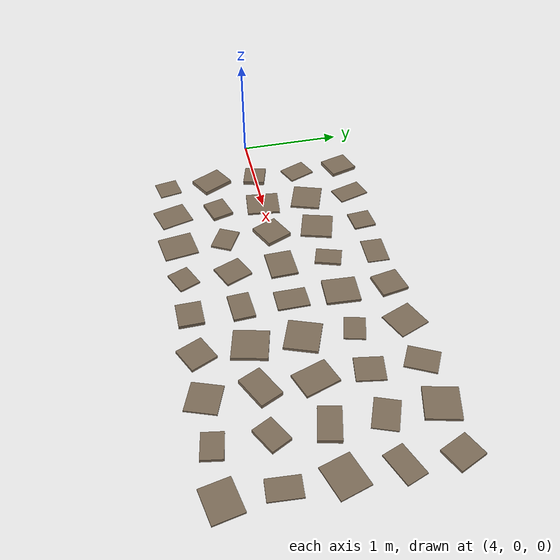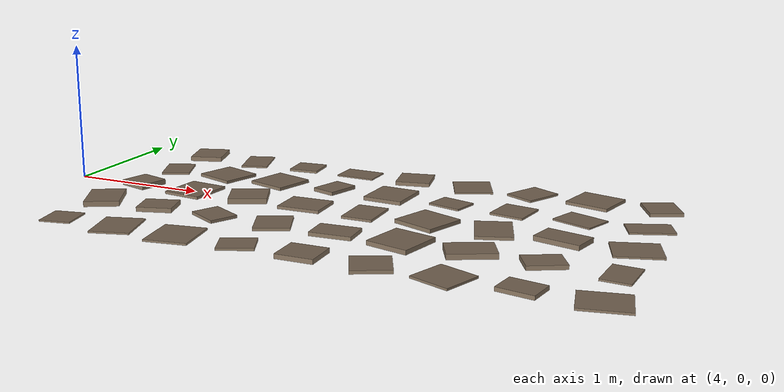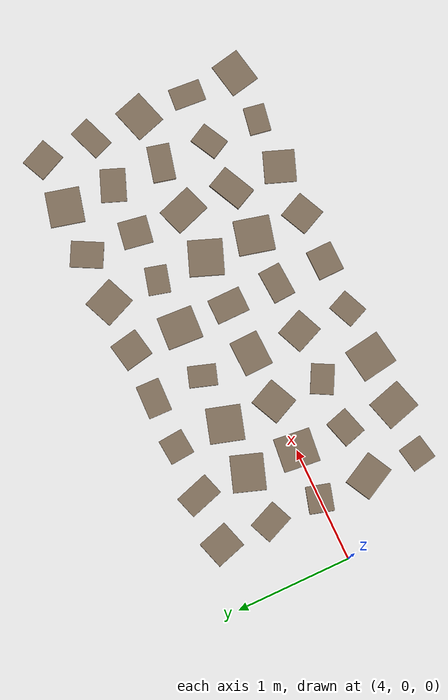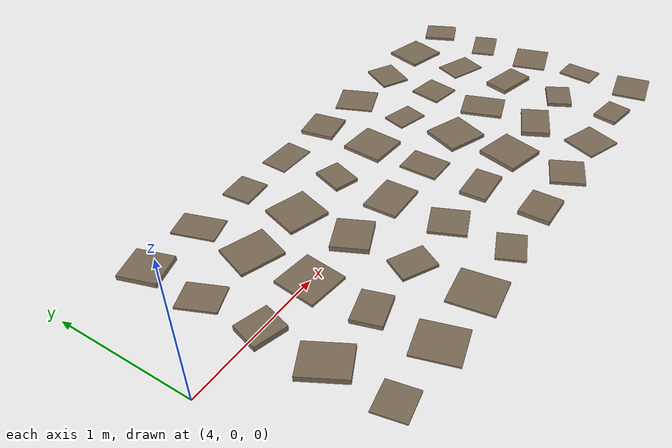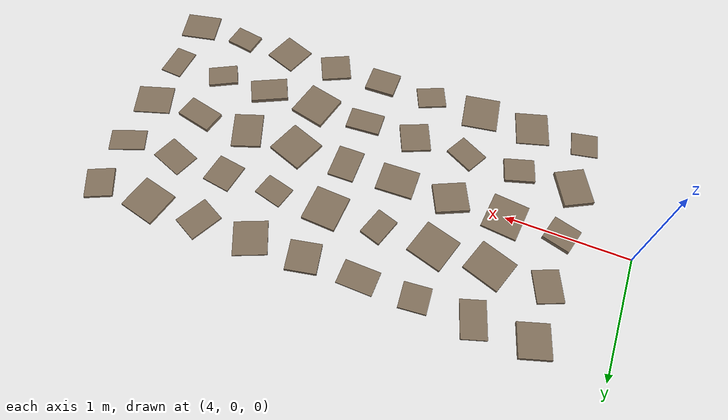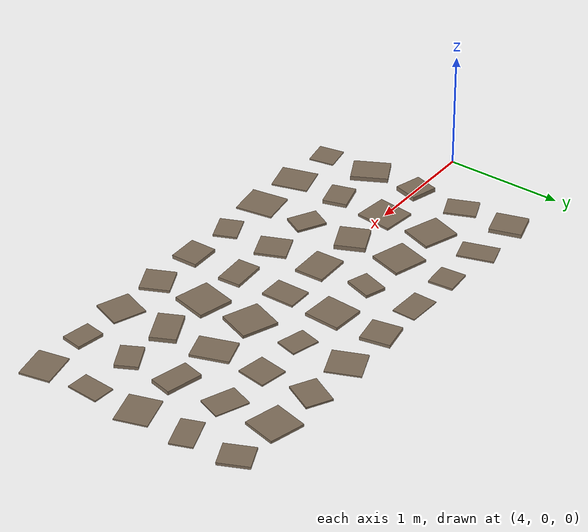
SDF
<sdf version="1.6">
 <world name="default">
  <include><uri>model://sun</uri></include>
  <model name="rough_patch_9_0">
   <static>true</static>
   <pose>4.550 -0.900 0.0054 0 0 0.1925</pose>
   <link name="link">
    <collision name="collision">
     <geometry><box><size>0.219 0.216 0.0108</size></box></geometry>
     <surface>
      <friction><ode><mu>0.8</mu><mu2>0.8</mu2><slip1>0.0</slip1><slip2>0.0</slip2></ode></friction>
      <contact>
       <ode><kp>1000000.0</kp><kd>100.0</kd><max_vel>0.01</max_vel><min_depth>0.001</min_depth></ode>
      </contact>
     </surface>
    </collision>
    <visual name="visual">
     <geometry><box><size>0.219 0.216 0.0108</size></box></geometry>
     <material><ambient>0.38 0.34 0.28 1</ambient><diffuse>0.50 0.43 0.35 1</diffuse></material>
    </visual>
   </link>
  </model>
  <model name="rough_patch_9_1">
   <static>true</static>
   <pose>4.550 -0.450 0.0193 0 0 0.4880</pose>
   <link name="link">
    <collision name="collision">
     <geometry><box><size>0.243 0.311 0.0387</size></box></geometry>
     <surface>
      <friction><ode><mu>0.8</mu><mu2>0.8</mu2><slip1>0.0</slip1><slip2>0.0</slip2></ode></friction>
      <contact>
       <ode><kp>1000000.0</kp><kd>100.0</kd><max_vel>0.01</max_vel><min_depth>0.001</min_depth></ode>
      </contact>
     </surface>
    </collision>
    <visual name="visual">
     <geometry><box><size>0.243 0.311 0.0387</size></box></geometry>
     <material><ambient>0.38 0.34 0.28 1</ambient><diffuse>0.50 0.43 0.35 1</diffuse></material>
    </visual>
   </link>
  </model>
  <model name="rough_patch_9_2">
   <static>true</static>
   <pose>4.550 0.000 0.0193 0 0 -0.2732</pose>
   <link name="link">
    <collision name="collision">
     <geometry><box><size>0.231 0.211 0.0387</size></box></geometry>
     <surface>
      <friction><ode><mu>0.8</mu><mu2>0.8</mu2><slip1>0.0</slip1><slip2>0.0</slip2></ode></friction>
      <contact>
       <ode><kp>1000000.0</kp><kd>100.0</kd><max_vel>0.01</max_vel><min_depth>0.001</min_depth></ode>
      </contact>
     </surface>
    </collision>
    <visual name="visual">
     <geometry><box><size>0.231 0.211 0.0387</size></box></geometry>
     <material><ambient>0.38 0.34 0.28 1</ambient><diffuse>0.50 0.43 0.35 1</diffuse></material>
    </visual>
   </link>
  </model>
  <model name="rough_patch_9_3">
   <static>true</static>
   <pose>4.550 0.450 0.0080 0 0 0.4003</pose>
   <link name="link">
    <collision name="collision">
     <geometry><box><size>0.209 0.267 0.0159</size></box></geometry>
     <surface>
      <friction><ode><mu>0.8</mu><mu2>0.8</mu2><slip1>0.0</slip1><slip2>0.0</slip2></ode></friction>
      <contact>
       <ode><kp>1000000.0</kp><kd>100.0</kd><max_vel>0.01</max_vel><min_depth>0.001</min_depth></ode>
      </contact>
     </surface>
    </collision>
    <visual name="visual">
     <geometry><box><size>0.209 0.267 0.0159</size></box></geometry>
     <material><ambient>0.38 0.34 0.28 1</ambient><diffuse>0.50 0.43 0.35 1</diffuse></material>
    </visual>
   </link>
  </model>
  <model name="rough_patch_9_4">
   <static>true</static>
   <pose>4.550 0.900 0.0176 0 0 0.2996</pose>
   <link name="link">
    <collision name="collision">
     <geometry><box><size>0.247 0.271 0.0352</size></box></geometry>
     <surface>
      <friction><ode><mu>0.8</mu><mu2>0.8</mu2><slip1>0.0</slip1><slip2>0.0</slip2></ode></friction>
      <contact>
       <ode><kp>1000000.0</kp><kd>100.0</kd><max_vel>0.01</max_vel><min_depth>0.001</min_depth></ode>
      </contact>
     </surface>
    </collision>
    <visual name="visual">
     <geometry><box><size>0.247 0.271 0.0352</size></box></geometry>
     <material><ambient>0.38 0.34 0.28 1</ambient><diffuse>0.50 0.43 0.35 1</diffuse></material>
    </visual>
   </link>
  </model>
  <model name="rough_patch_10_0">
   <static>true</static>
   <pose>5.000 -0.900 0.0063 0 0 0.2823</pose>
   <link name="link">
    <collision name="collision">
     <geometry><box><size>0.272 0.307 0.0125</size></box></geometry>
     <surface>
      <friction><ode><mu>0.8</mu><mu2>0.8</mu2><slip1>0.0</slip1><slip2>0.0</slip2></ode></friction>
      <contact>
       <ode><kp>1000000.0</kp><kd>100.0</kd><max_vel>0.01</max_vel><min_depth>0.001</min_depth></ode>
      </contact>
     </surface>
    </collision>
    <visual name="visual">
     <geometry><box><size>0.272 0.307 0.0125</size></box></geometry>
     <material><ambient>0.38 0.34 0.28 1</ambient><diffuse>0.50 0.43 0.35 1</diffuse></material>
    </visual>
   </link>
  </model>
  <model name="rough_patch_10_1">
   <static>true</static>
   <pose>5.000 -0.450 0.0163 0 0 0.2891</pose>
   <link name="link">
    <collision name="collision">
     <geometry><box><size>0.247 0.205 0.0325</size></box></geometry>
     <surface>
      <friction><ode><mu>0.8</mu><mu2>0.8</mu2><slip1>0.0</slip1><slip2>0.0</slip2></ode></friction>
      <contact>
       <ode><kp>1000000.0</kp><kd>100.0</kd><max_vel>0.01</max_vel><min_depth>0.001</min_depth></ode>
      </contact>
     </surface>
    </collision>
    <visual name="visual">
     <geometry><box><size>0.247 0.205 0.0325</size></box></geometry>
     <material><ambient>0.38 0.34 0.28 1</ambient><diffuse>0.50 0.43 0.35 1</diffuse></material>
    </visual>
   </link>
  </model>
  <model name="rough_patch_10_2">
   <static>true</static>
   <pose>5.000 0.000 0.0100 0 0 -0.1042</pose>
   <link name="link">
    <collision name="collision">
     <geometry><box><size>0.292 0.316 0.0200</size></box></geometry>
     <surface>
      <friction><ode><mu>0.8</mu><mu2>0.8</mu2><slip1>0.0</slip1><slip2>0.0</slip2></ode></friction>
      <contact>
       <ode><kp>1000000.0</kp><kd>100.0</kd><max_vel>0.01</max_vel><min_depth>0.001</min_depth></ode>
      </contact>
     </surface>
    </collision>
    <visual name="visual">
     <geometry><box><size>0.292 0.316 0.0200</size></box></geometry>
     <material><ambient>0.38 0.34 0.28 1</ambient><diffuse>0.50 0.43 0.35 1</diffuse></material>
    </visual>
   </link>
  </model>
  <model name="rough_patch_10_3">
   <static>true</static>
   <pose>5.000 0.450 0.0110 0 0 -0.3300</pose>
   <link name="link">
    <collision name="collision">
     <geometry><box><size>0.313 0.281 0.0220</size></box></geometry>
     <surface>
      <friction><ode><mu>0.8</mu><mu2>0.8</mu2><slip1>0.0</slip1><slip2>0.0</slip2></ode></friction>
      <contact>
       <ode><kp>1000000.0</kp><kd>100.0</kd><max_vel>0.01</max_vel><min_depth>0.001</min_depth></ode>
      </contact>
     </surface>
    </collision>
    <visual name="visual">
     <geometry><box><size>0.313 0.281 0.0220</size></box></geometry>
     <material><ambient>0.38 0.34 0.28 1</ambient><diffuse>0.50 0.43 0.35 1</diffuse></material>
    </visual>
   </link>
  </model>
  <model name="rough_patch_10_4">
   <static>true</static>
   <pose>5.000 0.900 0.0069 0 0 0.3065</pose>
   <link name="link">
    <collision name="collision">
     <geometry><box><size>0.201 0.307 0.0138</size></box></geometry>
     <surface>
      <friction><ode><mu>0.8</mu><mu2>0.8</mu2><slip1>0.0</slip1><slip2>0.0</slip2></ode></friction>
      <contact>
       <ode><kp>1000000.0</kp><kd>100.0</kd><max_vel>0.01</max_vel><min_depth>0.001</min_depth></ode>
      </contact>
     </surface>
    </collision>
    <visual name="visual">
     <geometry><box><size>0.201 0.307 0.0138</size></box></geometry>
     <material><ambient>0.38 0.34 0.28 1</ambient><diffuse>0.50 0.43 0.35 1</diffuse></material>
    </visual>
   </link>
  </model>
  <model name="rough_patch_11_0">
   <static>true</static>
   <pose>5.450 -0.900 0.0072 0 0 0.1573</pose>
   <link name="link">
    <collision name="collision">
     <geometry><box><size>0.296 0.317 0.0144</size></box></geometry>
     <surface>
      <friction><ode><mu>0.8</mu><mu2>0.8</mu2><slip1>0.0</slip1><slip2>0.0</slip2></ode></friction>
      <contact>
       <ode><kp>1000000.0</kp><kd>100.0</kd><max_vel>0.01</max_vel><min_depth>0.001</min_depth></ode>
      </contact>
     </surface>
    </collision>
    <visual name="visual">
     <geometry><box><size>0.296 0.317 0.0144</size></box></geometry>
     <material><ambient>0.38 0.34 0.28 1</ambient><diffuse>0.50 0.43 0.35 1</diffuse></material>
    </visual>
   </link>
  </model>
  <model name="rough_patch_11_1">
   <static>true</static>
   <pose>5.450 -0.450 0.0103 0 0 -0.4858</pose>
   <link name="link">
    <collision name="collision">
     <geometry><box><size>0.257 0.198 0.0205</size></box></geometry>
     <surface>
      <friction><ode><mu>0.8</mu><mu2>0.8</mu2><slip1>0.0</slip1><slip2>0.0</slip2></ode></friction>
      <contact>
       <ode><kp>1000000.0</kp><kd>100.0</kd><max_vel>0.01</max_vel><min_depth>0.001</min_depth></ode>
      </contact>
     </surface>
    </collision>
    <visual name="visual">
     <geometry><box><size>0.257 0.198 0.0205</size></box></geometry>
     <material><ambient>0.38 0.34 0.28 1</ambient><diffuse>0.50 0.43 0.35 1</diffuse></material>
    </visual>
   </link>
  </model>
  <model name="rough_patch_11_2">
   <static>true</static>
   <pose>5.450 0.000 0.0196 0 0 0.4336</pose>
   <link name="link">
    <collision name="collision">
     <geometry><box><size>0.271 0.254 0.0391</size></box></geometry>
     <surface>
      <friction><ode><mu>0.8</mu><mu2>0.8</mu2><slip1>0.0</slip1><slip2>0.0</slip2></ode></friction>
      <contact>
       <ode><kp>1000000.0</kp><kd>100.0</kd><max_vel>0.01</max_vel><min_depth>0.001</min_depth></ode>
      </contact>
     </surface>
    </collision>
    <visual name="visual">
     <geometry><box><size>0.271 0.254 0.0391</size></box></geometry>
     <material><ambient>0.38 0.34 0.28 1</ambient><diffuse>0.50 0.43 0.35 1</diffuse></material>
    </visual>
   </link>
  </model>
  <model name="rough_patch_11_3">
   <static>true</static>
   <pose>5.450 0.450 0.0115 0 0 -0.2890</pose>
   <link name="link">
    <collision name="collision">
     <geometry><box><size>0.302 0.296 0.0230</size></box></geometry>
     <surface>
      <friction><ode><mu>0.8</mu><mu2>0.8</mu2><slip1>0.0</slip1><slip2>0.0</slip2></ode></friction>
      <contact>
       <ode><kp>1000000.0</kp><kd>100.0</kd><max_vel>0.01</max_vel><min_depth>0.001</min_depth></ode>
      </contact>
     </surface>
    </collision>
    <visual name="visual">
     <geometry><box><size>0.302 0.296 0.0230</size></box></geometry>
     <material><ambient>0.38 0.34 0.28 1</ambient><diffuse>0.50 0.43 0.35 1</diffuse></material>
    </visual>
   </link>
  </model>
  <model name="rough_patch_11_4">
   <static>true</static>
   <pose>5.450 0.900 0.0088 0 0 0.0864</pose>
   <link name="link">
    <collision name="collision">
     <geometry><box><size>0.221 0.214 0.0176</size></box></geometry>
     <surface>
      <friction><ode><mu>0.8</mu><mu2>0.8</mu2><slip1>0.0</slip1><slip2>0.0</slip2></ode></friction>
      <contact>
       <ode><kp>1000000.0</kp><kd>100.0</kd><max_vel>0.01</max_vel><min_depth>0.001</min_depth></ode>
      </contact>
     </surface>
    </collision>
    <visual name="visual">
     <geometry><box><size>0.221 0.214 0.0176</size></box></geometry>
     <material><ambient>0.38 0.34 0.28 1</ambient><diffuse>0.50 0.43 0.35 1</diffuse></material>
    </visual>
   </link>
  </model>
  <model name="rough_patch_12_0">
   <static>true</static>
   <pose>5.900 -0.900 0.0089 0 0 0.4100</pose>
   <link name="link">
    <collision name="collision">
     <geometry><box><size>0.239 0.198 0.0178</size></box></geometry>
     <surface>
      <friction><ode><mu>0.8</mu><mu2>0.8</mu2><slip1>0.0</slip1><slip2>0.0</slip2></ode></friction>
      <contact>
       <ode><kp>1000000.0</kp><kd>100.0</kd><max_vel>0.01</max_vel><min_depth>0.001</min_depth></ode>
      </contact>
     </surface>
    </collision>
    <visual name="visual">
     <geometry><box><size>0.239 0.198 0.0178</size></box></geometry>
     <material><ambient>0.38 0.34 0.28 1</ambient><diffuse>0.50 0.43 0.35 1</diffuse></material>
    </visual>
   </link>
  </model>
  <model name="rough_patch_12_1">
   <static>true</static>
   <pose>5.900 -0.450 0.0103 0 0 0.4043</pose>
   <link name="link">
    <collision name="collision">
     <geometry><box><size>0.244 0.262 0.0206</size></box></geometry>
     <surface>
      <friction><ode><mu>0.8</mu><mu2>0.8</mu2><slip1>0.0</slip1><slip2>0.0</slip2></ode></friction>
      <contact>
       <ode><kp>1000000.0</kp><kd>100.0</kd><max_vel>0.01</max_vel><min_depth>0.001</min_depth></ode>
      </contact>
     </surface>
    </collision>
    <visual name="visual">
     <geometry><box><size>0.244 0.262 0.0206</size></box></geometry>
     <material><ambient>0.38 0.34 0.28 1</ambient><diffuse>0.50 0.43 0.35 1</diffuse></material>
    </visual>
   </link>
  </model>
  <model name="rough_patch_12_2">
   <static>true</static>
   <pose>5.900 0.000 0.0113 0 0 0.0318</pose>
   <link name="link">
    <collision name="collision">
     <geometry><box><size>0.308 0.250 0.0226</size></box></geometry>
     <surface>
      <friction><ode><mu>0.8</mu><mu2>0.8</mu2><slip1>0.0</slip1><slip2>0.0</slip2></ode></friction>
      <contact>
       <ode><kp>1000000.0</kp><kd>100.0</kd><max_vel>0.01</max_vel><min_depth>0.001</min_depth></ode>
      </contact>
     </surface>
    </collision>
    <visual name="visual">
     <geometry><box><size>0.308 0.250 0.0226</size></box></geometry>
     <material><ambient>0.38 0.34 0.28 1</ambient><diffuse>0.50 0.43 0.35 1</diffuse></material>
    </visual>
   </link>
  </model>
  <model name="rough_patch_12_3">
   <static>true</static>
   <pose>5.900 0.450 0.0129 0 0 -0.3169</pose>
   <link name="link">
    <collision name="collision">
     <geometry><box><size>0.183 0.242 0.0257</size></box></geometry>
     <surface>
      <friction><ode><mu>0.8</mu><mu2>0.8</mu2><slip1>0.0</slip1><slip2>0.0</slip2></ode></friction>
      <contact>
       <ode><kp>1000000.0</kp><kd>100.0</kd><max_vel>0.01</max_vel><min_depth>0.001</min_depth></ode>
      </contact>
     </surface>
    </collision>
    <visual name="visual">
     <geometry><box><size>0.183 0.242 0.0257</size></box></geometry>
     <material><ambient>0.38 0.34 0.28 1</ambient><diffuse>0.50 0.43 0.35 1</diffuse></material>
    </visual>
   </link>
  </model>
  <model name="rough_patch_12_4">
   <static>true</static>
   <pose>5.900 0.900 0.0051 0 0 -0.0265</pose>
   <link name="link">
    <collision name="collision">
     <geometry><box><size>0.292 0.204 0.0101</size></box></geometry>
     <surface>
      <friction><ode><mu>0.8</mu><mu2>0.8</mu2><slip1>0.0</slip1><slip2>0.0</slip2></ode></friction>
      <contact>
       <ode><kp>1000000.0</kp><kd>100.0</kd><max_vel>0.01</max_vel><min_depth>0.001</min_depth></ode>
      </contact>
     </surface>
    </collision>
    <visual name="visual">
     <geometry><box><size>0.292 0.204 0.0101</size></box></geometry>
     <material><ambient>0.38 0.34 0.28 1</ambient><diffuse>0.50 0.43 0.35 1</diffuse></material>
    </visual>
   </link>
  </model>
  <model name="rough_patch_13_0">
   <static>true</static>
   <pose>6.350 -0.900 0.0159 0 0 0.0183</pose>
   <link name="link">
    <collision name="collision">
     <geometry><box><size>0.258 0.226 0.0318</size></box></geometry>
     <surface>
      <friction><ode><mu>0.8</mu><mu2>0.8</mu2><slip1>0.0</slip1><slip2>0.0</slip2></ode></friction>
      <contact>
       <ode><kp>1000000.0</kp><kd>100.0</kd><max_vel>0.01</max_vel><min_depth>0.001</min_depth></ode>
      </contact>
     </surface>
    </collision>
    <visual name="visual">
     <geometry><box><size>0.258 0.226 0.0318</size></box></geometry>
     <material><ambient>0.38 0.34 0.28 1</ambient><diffuse>0.50 0.43 0.35 1</diffuse></material>
    </visual>
   </link>
  </model>
  <model name="rough_patch_13_1">
   <static>true</static>
   <pose>6.350 -0.450 0.0133 0 0 0.0603</pose>
   <link name="link">
    <collision name="collision">
     <geometry><box><size>0.290 0.195 0.0267</size></box></geometry>
     <surface>
      <friction><ode><mu>0.8</mu><mu2>0.8</mu2><slip1>0.0</slip1><slip2>0.0</slip2></ode></friction>
      <contact>
       <ode><kp>1000000.0</kp><kd>100.0</kd><max_vel>0.01</max_vel><min_depth>0.001</min_depth></ode>
      </contact>
     </surface>
    </collision>
    <visual name="visual">
     <geometry><box><size>0.290 0.195 0.0267</size></box></geometry>
     <material><ambient>0.38 0.34 0.28 1</ambient><diffuse>0.50 0.43 0.35 1</diffuse></material>
    </visual>
   </link>
  </model>
  <model name="rough_patch_13_2">
   <static>true</static>
   <pose>6.350 0.000 0.0087 0 0 0.0077</pose>
   <link name="link">
    <collision name="collision">
     <geometry><box><size>0.219 0.288 0.0175</size></box></geometry>
     <surface>
      <friction><ode><mu>0.8</mu><mu2>0.8</mu2><slip1>0.0</slip1><slip2>0.0</slip2></ode></friction>
      <contact>
       <ode><kp>1000000.0</kp><kd>100.0</kd><max_vel>0.01</max_vel><min_depth>0.001</min_depth></ode>
      </contact>
     </surface>
    </collision>
    <visual name="visual">
     <geometry><box><size>0.219 0.288 0.0175</size></box></geometry>
     <material><ambient>0.38 0.34 0.28 1</ambient><diffuse>0.50 0.43 0.35 1</diffuse></material>
    </visual>
   </link>
  </model>
  <model name="rough_patch_13_3">
   <static>true</static>
   <pose>6.350 0.450 0.0134 0 0 -0.0568</pose>
   <link name="link">
    <collision name="collision">
     <geometry><box><size>0.286 0.308 0.0269</size></box></geometry>
     <surface>
      <friction><ode><mu>0.8</mu><mu2>0.8</mu2><slip1>0.0</slip1><slip2>0.0</slip2></ode></friction>
      <contact>
       <ode><kp>1000000.0</kp><kd>100.0</kd><max_vel>0.01</max_vel><min_depth>0.001</min_depth></ode>
      </contact>
     </surface>
    </collision>
    <visual name="visual">
     <geometry><box><size>0.286 0.308 0.0269</size></box></geometry>
     <material><ambient>0.38 0.34 0.28 1</ambient><diffuse>0.50 0.43 0.35 1</diffuse></material>
    </visual>
   </link>
  </model>
  <model name="rough_patch_13_4">
   <static>true</static>
   <pose>6.350 0.900 0.0142 0 0 0.1927</pose>
   <link name="link">
    <collision name="collision">
     <geometry><box><size>0.251 0.252 0.0284</size></box></geometry>
     <surface>
      <friction><ode><mu>0.8</mu><mu2>0.8</mu2><slip1>0.0</slip1><slip2>0.0</slip2></ode></friction>
      <contact>
       <ode><kp>1000000.0</kp><kd>100.0</kd><max_vel>0.01</max_vel><min_depth>0.001</min_depth></ode>
      </contact>
     </surface>
    </collision>
    <visual name="visual">
     <geometry><box><size>0.251 0.252 0.0284</size></box></geometry>
     <material><ambient>0.38 0.34 0.28 1</ambient><diffuse>0.50 0.43 0.35 1</diffuse></material>
    </visual>
   </link>
  </model>
  <model name="rough_patch_14_0">
   <static>true</static>
   <pose>6.800 -0.900 0.0118 0 0 0.4415</pose>
   <link name="link">
    <collision name="collision">
     <geometry><box><size>0.255 0.247 0.0236</size></box></geometry>
     <surface>
      <friction><ode><mu>0.8</mu><mu2>0.8</mu2><slip1>0.0</slip1><slip2>0.0</slip2></ode></friction>
      <contact>
       <ode><kp>1000000.0</kp><kd>100.0</kd><max_vel>0.01</max_vel><min_depth>0.001</min_depth></ode>
      </contact>
     </surface>
    </collision>
    <visual name="visual">
     <geometry><box><size>0.255 0.247 0.0236</size></box></geometry>
     <material><ambient>0.38 0.34 0.28 1</ambient><diffuse>0.50 0.43 0.35 1</diffuse></material>
    </visual>
   </link>
  </model>
  <model name="rough_patch_14_1">
   <static>true</static>
   <pose>6.800 -0.450 0.0155 0 0 -0.2404</pose>
   <link name="link">
    <collision name="collision">
     <geometry><box><size>0.303 0.312 0.0310</size></box></geometry>
     <surface>
      <friction><ode><mu>0.8</mu><mu2>0.8</mu2><slip1>0.0</slip1><slip2>0.0</slip2></ode></friction>
      <contact>
       <ode><kp>1000000.0</kp><kd>100.0</kd><max_vel>0.01</max_vel><min_depth>0.001</min_depth></ode>
      </contact>
     </surface>
    </collision>
    <visual name="visual">
     <geometry><box><size>0.303 0.312 0.0310</size></box></geometry>
     <material><ambient>0.38 0.34 0.28 1</ambient><diffuse>0.50 0.43 0.35 1</diffuse></material>
    </visual>
   </link>
  </model>
  <model name="rough_patch_14_2">
   <static>true</static>
   <pose>6.800 0.000 0.0134 0 0 -0.3629</pose>
   <link name="link">
    <collision name="collision">
     <geometry><box><size>0.312 0.298 0.0268</size></box></geometry>
     <surface>
      <friction><ode><mu>0.8</mu><mu2>0.8</mu2><slip1>0.0</slip1><slip2>0.0</slip2></ode></friction>
      <contact>
       <ode><kp>1000000.0</kp><kd>100.0</kd><max_vel>0.01</max_vel><min_depth>0.001</min_depth></ode>
      </contact>
     </surface>
    </collision>
    <visual name="visual">
     <geometry><box><size>0.312 0.298 0.0268</size></box></geometry>
     <material><ambient>0.38 0.34 0.28 1</ambient><diffuse>0.50 0.43 0.35 1</diffuse></material>
    </visual>
   </link>
  </model>
  <model name="rough_patch_14_3">
   <static>true</static>
   <pose>6.800 0.450 0.0068 0 0 -0.2594</pose>
   <link name="link">
    <collision name="collision">
     <geometry><box><size>0.242 0.190 0.0136</size></box></geometry>
     <surface>
      <friction><ode><mu>0.8</mu><mu2>0.8</mu2><slip1>0.0</slip1><slip2>0.0</slip2></ode></friction>
      <contact>
       <ode><kp>1000000.0</kp><kd>100.0</kd><max_vel>0.01</max_vel><min_depth>0.001</min_depth></ode>
      </contact>
     </surface>
    </collision>
    <visual name="visual">
     <geometry><box><size>0.242 0.190 0.0136</size></box></geometry>
     <material><ambient>0.38 0.34 0.28 1</ambient><diffuse>0.50 0.43 0.35 1</diffuse></material>
    </visual>
   </link>
  </model>
  <model name="rough_patch_14_4">
   <static>true</static>
   <pose>6.800 0.900 0.0061 0 0 0.3970</pose>
   <link name="link">
    <collision name="collision">
     <geometry><box><size>0.274 0.290 0.0122</size></box></geometry>
     <surface>
      <friction><ode><mu>0.8</mu><mu2>0.8</mu2><slip1>0.0</slip1><slip2>0.0</slip2></ode></friction>
      <contact>
       <ode><kp>1000000.0</kp><kd>100.0</kd><max_vel>0.01</max_vel><min_depth>0.001</min_depth></ode>
      </contact>
     </surface>
    </collision>
    <visual name="visual">
     <geometry><box><size>0.274 0.290 0.0122</size></box></geometry>
     <material><ambient>0.38 0.34 0.28 1</ambient><diffuse>0.50 0.43 0.35 1</diffuse></material>
    </visual>
   </link>
  </model>
  <model name="rough_patch_15_0">
   <static>true</static>
   <pose>7.250 -0.900 0.0073 0 0 -0.3570</pose>
   <link name="link">
    <collision name="collision">
     <geometry><box><size>0.280 0.272 0.0146</size></box></geometry>
     <surface>
      <friction><ode><mu>0.8</mu><mu2>0.8</mu2><slip1>0.0</slip1><slip2>0.0</slip2></ode></friction>
      <contact>
       <ode><kp>1000000.0</kp><kd>100.0</kd><max_vel>0.01</max_vel><min_depth>0.001</min_depth></ode>
      </contact>
     </surface>
    </collision>
    <visual name="visual">
     <geometry><box><size>0.280 0.272 0.0146</size></box></geometry>
     <material><ambient>0.38 0.34 0.28 1</ambient><diffuse>0.50 0.43 0.35 1</diffuse></material>
    </visual>
   </link>
  </model>
  <model name="rough_patch_15_1">
   <static>true</static>
   <pose>7.250 -0.450 0.0182 0 0 0.4525</pose>
   <link name="link">
    <collision name="collision">
     <geometry><box><size>0.315 0.211 0.0365</size></box></geometry>
     <surface>
      <friction><ode><mu>0.8</mu><mu2>0.8</mu2><slip1>0.0</slip1><slip2>0.0</slip2></ode></friction>
      <contact>
       <ode><kp>1000000.0</kp><kd>100.0</kd><max_vel>0.01</max_vel><min_depth>0.001</min_depth></ode>
      </contact>
     </surface>
    </collision>
    <visual name="visual">
     <geometry><box><size>0.315 0.211 0.0365</size></box></geometry>
     <material><ambient>0.38 0.34 0.28 1</ambient><diffuse>0.50 0.43 0.35 1</diffuse></material>
    </visual>
   </link>
  </model>
  <model name="rough_patch_15_2">
   <static>true</static>
   <pose>7.250 0.000 0.0110 0 0 0.3324</pose>
   <link name="link">
    <collision name="collision">
     <geometry><box><size>0.248 0.319 0.0219</size></box></geometry>
     <surface>
      <friction><ode><mu>0.8</mu><mu2>0.8</mu2><slip1>0.0</slip1><slip2>0.0</slip2></ode></friction>
      <contact>
       <ode><kp>1000000.0</kp><kd>100.0</kd><max_vel>0.01</max_vel><min_depth>0.001</min_depth></ode>
      </contact>
     </surface>
    </collision>
    <visual name="visual">
     <geometry><box><size>0.248 0.319 0.0219</size></box></geometry>
     <material><ambient>0.38 0.34 0.28 1</ambient><diffuse>0.50 0.43 0.35 1</diffuse></material>
    </visual>
   </link>
  </model>
  <model name="rough_patch_15_3">
   <static>true</static>
   <pose>7.250 0.450 0.0074 0 0 -0.1609</pose>
   <link name="link">
    <collision name="collision">
     <geometry><box><size>0.240 0.252 0.0148</size></box></geometry>
     <surface>
      <friction><ode><mu>0.8</mu><mu2>0.8</mu2><slip1>0.0</slip1><slip2>0.0</slip2></ode></friction>
      <contact>
       <ode><kp>1000000.0</kp><kd>100.0</kd><max_vel>0.01</max_vel><min_depth>0.001</min_depth></ode>
      </contact>
     </surface>
    </collision>
    <visual name="visual">
     <geometry><box><size>0.240 0.252 0.0148</size></box></geometry>
     <material><ambient>0.38 0.34 0.28 1</ambient><diffuse>0.50 0.43 0.35 1</diffuse></material>
    </visual>
   </link>
  </model>
  <model name="rough_patch_15_4">
   <static>true</static>
   <pose>7.250 0.900 0.0079 0 0 -0.4805</pose>
   <link name="link">
    <collision name="collision">
     <geometry><box><size>0.225 0.281 0.0159</size></box></geometry>
     <surface>
      <friction><ode><mu>0.8</mu><mu2>0.8</mu2><slip1>0.0</slip1><slip2>0.0</slip2></ode></friction>
      <contact>
       <ode><kp>1000000.0</kp><kd>100.0</kd><max_vel>0.01</max_vel><min_depth>0.001</min_depth></ode>
      </contact>
     </surface>
    </collision>
    <visual name="visual">
     <geometry><box><size>0.225 0.281 0.0159</size></box></geometry>
     <material><ambient>0.38 0.34 0.28 1</ambient><diffuse>0.50 0.43 0.35 1</diffuse></material>
    </visual>
   </link>
  </model>
  <model name="rough_patch_16_0">
   <static>true</static>
   <pose>7.700 -0.900 0.0133 0 0 -0.1685</pose>
   <link name="link">
    <collision name="collision">
     <geometry><box><size>0.242 0.183 0.0266</size></box></geometry>
     <surface>
      <friction><ode><mu>0.8</mu><mu2>0.8</mu2><slip1>0.0</slip1><slip2>0.0</slip2></ode></friction>
      <contact>
       <ode><kp>1000000.0</kp><kd>100.0</kd><max_vel>0.01</max_vel><min_depth>0.001</min_depth></ode>
      </contact>
     </surface>
    </collision>
    <visual name="visual">
     <geometry><box><size>0.242 0.183 0.0266</size></box></geometry>
     <material><ambient>0.38 0.34 0.28 1</ambient><diffuse>0.50 0.43 0.35 1</diffuse></material>
    </visual>
   </link>
  </model>
  <model name="rough_patch_16_1">
   <static>true</static>
   <pose>7.700 -0.450 0.0144 0 0 0.4851</pose>
   <link name="link">
    <collision name="collision">
     <geometry><box><size>0.252 0.189 0.0287</size></box></geometry>
     <surface>
      <friction><ode><mu>0.8</mu><mu2>0.8</mu2><slip1>0.0</slip1><slip2>0.0</slip2></ode></friction>
      <contact>
       <ode><kp>1000000.0</kp><kd>100.0</kd><max_vel>0.01</max_vel><min_depth>0.001</min_depth></ode>
      </contact>
     </surface>
    </collision>
    <visual name="visual">
     <geometry><box><size>0.252 0.189 0.0287</size></box></geometry>
     <material><ambient>0.38 0.34 0.28 1</ambient><diffuse>0.50 0.43 0.35 1</diffuse></material>
    </visual>
   </link>
  </model>
  <model name="rough_patch_16_2">
   <static>true</static>
   <pose>7.700 0.000 0.0168 0 0 -0.2344</pose>
   <link name="link">
    <collision name="collision">
     <geometry><box><size>0.316 0.195 0.0337</size></box></geometry>
     <surface>
      <friction><ode><mu>0.8</mu><mu2>0.8</mu2><slip1>0.0</slip1><slip2>0.0</slip2></ode></friction>
      <contact>
       <ode><kp>1000000.0</kp><kd>100.0</kd><max_vel>0.01</max_vel><min_depth>0.001</min_depth></ode>
      </contact>
     </surface>
    </collision>
    <visual name="visual">
     <geometry><box><size>0.316 0.195 0.0337</size></box></geometry>
     <material><ambient>0.38 0.34 0.28 1</ambient><diffuse>0.50 0.43 0.35 1</diffuse></material>
    </visual>
   </link>
  </model>
  <model name="rough_patch_16_3">
   <static>true</static>
   <pose>7.700 0.450 0.0056 0 0 -0.3704</pose>
   <link name="link">
    <collision name="collision">
     <geometry><box><size>0.289 0.218 0.0112</size></box></geometry>
     <surface>
      <friction><ode><mu>0.8</mu><mu2>0.8</mu2><slip1>0.0</slip1><slip2>0.0</slip2></ode></friction>
      <contact>
       <ode><kp>1000000.0</kp><kd>100.0</kd><max_vel>0.01</max_vel><min_depth>0.001</min_depth></ode>
      </contact>
     </surface>
    </collision>
    <visual name="visual">
     <geometry><box><size>0.289 0.218 0.0112</size></box></geometry>
     <material><ambient>0.38 0.34 0.28 1</ambient><diffuse>0.50 0.43 0.35 1</diffuse></material>
    </visual>
   </link>
  </model>
  <model name="rough_patch_16_4">
   <static>true</static>
   <pose>7.700 0.900 0.0113 0 0 -0.2414</pose>
   <link name="link">
    <collision name="collision">
     <geometry><box><size>0.308 0.295 0.0227</size></box></geometry>
     <surface>
      <friction><ode><mu>0.8</mu><mu2>0.8</mu2><slip1>0.0</slip1><slip2>0.0</slip2></ode></friction>
      <contact>
       <ode><kp>1000000.0</kp><kd>100.0</kd><max_vel>0.01</max_vel><min_depth>0.001</min_depth></ode>
      </contact>
     </surface>
    </collision>
    <visual name="visual">
     <geometry><box><size>0.308 0.295 0.0227</size></box></geometry>
     <material><ambient>0.38 0.34 0.28 1</ambient><diffuse>0.50 0.43 0.35 1</diffuse></material>
    </visual>
   </link>
  </model>
  <model name="rough_patch_17_0">
   <static>true</static>
   <pose>8.150 -0.900 0.0072 0 0 0.2004</pose>
   <link name="link">
    <collision name="collision">
     <geometry><box><size>0.309 0.260 0.0145</size></box></geometry>
     <surface>
      <friction><ode><mu>0.8</mu><mu2>0.8</mu2><slip1>0.0</slip1><slip2>0.0</slip2></ode></friction>
      <contact>
       <ode><kp>1000000.0</kp><kd>100.0</kd><max_vel>0.01</max_vel><min_depth>0.001</min_depth></ode>
      </contact>
     </surface>
    </collision>
    <visual name="visual">
     <geometry><box><size>0.309 0.260 0.0145</size></box></geometry>
     <material><ambient>0.38 0.34 0.28 1</ambient><diffuse>0.50 0.43 0.35 1</diffuse></material>
    </visual>
   </link>
  </model>
  <model name="rough_patch_17_1">
   <static>true</static>
   <pose>8.150 -0.450 0.0063 0 0 -0.0747</pose>
   <link name="link">
    <collision name="collision">
     <geometry><box><size>0.188 0.276 0.0127</size></box></geometry>
     <surface>
      <friction><ode><mu>0.8</mu><mu2>0.8</mu2><slip1>0.0</slip1><slip2>0.0</slip2></ode></friction>
      <contact>
       <ode><kp>1000000.0</kp><kd>100.0</kd><max_vel>0.01</max_vel><min_depth>0.001</min_depth></ode>
      </contact>
     </surface>
    </collision>
    <visual name="visual">
     <geometry><box><size>0.188 0.276 0.0127</size></box></geometry>
     <material><ambient>0.38 0.34 0.28 1</ambient><diffuse>0.50 0.43 0.35 1</diffuse></material>
    </visual>
   </link>
  </model>
  <model name="rough_patch_17_2">
   <static>true</static>
   <pose>8.150 0.000 0.0061 0 0 0.3016</pose>
   <link name="link">
    <collision name="collision">
     <geometry><box><size>0.311 0.269 0.0122</size></box></geometry>
     <surface>
      <friction><ode><mu>0.8</mu><mu2>0.8</mu2><slip1>0.0</slip1><slip2>0.0</slip2></ode></friction>
      <contact>
       <ode><kp>1000000.0</kp><kd>100.0</kd><max_vel>0.01</max_vel><min_depth>0.001</min_depth></ode>
      </contact>
     </surface>
    </collision>
    <visual name="visual">
     <geometry><box><size>0.311 0.269 0.0122</size></box></geometry>
     <material><ambient>0.38 0.34 0.28 1</ambient><diffuse>0.50 0.43 0.35 1</diffuse></material>
    </visual>
   </link>
  </model>
  <model name="rough_patch_17_3">
   <static>true</static>
   <pose>8.150 0.450 0.0063 0 0 0.3628</pose>
   <link name="link">
    <collision name="collision">
     <geometry><box><size>0.300 0.189 0.0125</size></box></geometry>
     <surface>
      <friction><ode><mu>0.8</mu><mu2>0.8</mu2><slip1>0.0</slip1><slip2>0.0</slip2></ode></friction>
      <contact>
       <ode><kp>1000000.0</kp><kd>100.0</kd><max_vel>0.01</max_vel><min_depth>0.001</min_depth></ode>
      </contact>
     </surface>
    </collision>
    <visual name="visual">
     <geometry><box><size>0.300 0.189 0.0125</size></box></geometry>
     <material><ambient>0.38 0.34 0.28 1</ambient><diffuse>0.50 0.43 0.35 1</diffuse></material>
    </visual>
   </link>
  </model>
  <model name="rough_patch_17_4">
   <static>true</static>
   <pose>8.150 0.900 0.0118 0 0 0.4267</pose>
   <link name="link">
    <collision name="collision">
     <geometry><box><size>0.227 0.257 0.0236</size></box></geometry>
     <surface>
      <friction><ode><mu>0.8</mu><mu2>0.8</mu2><slip1>0.0</slip1><slip2>0.0</slip2></ode></friction>
      <contact>
       <ode><kp>1000000.0</kp><kd>100.0</kd><max_vel>0.01</max_vel><min_depth>0.001</min_depth></ode>
      </contact>
     </surface>
    </collision>
    <visual name="visual">
     <geometry><box><size>0.227 0.257 0.0236</size></box></geometry>
     <material><ambient>0.38 0.34 0.28 1</ambient><diffuse>0.50 0.43 0.35 1</diffuse></material>
    </visual>
   </link>
  </model>
 </world>
</sdf>
